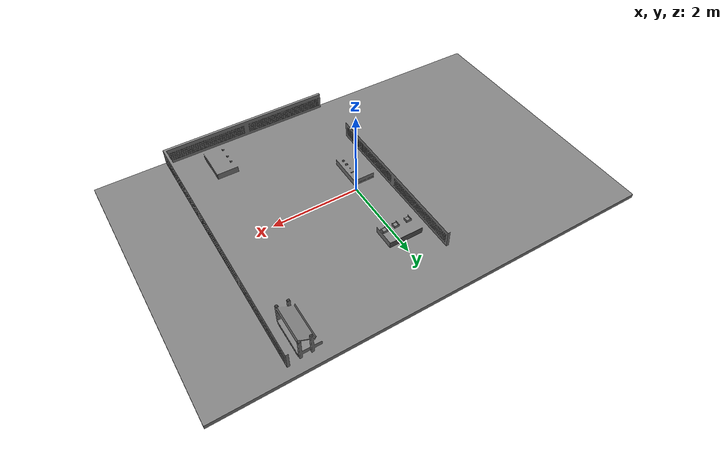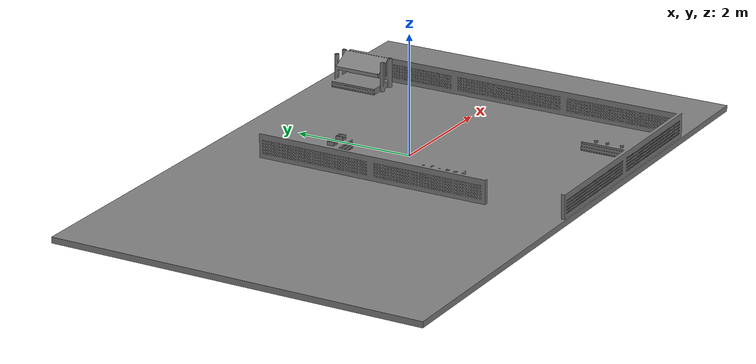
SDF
<?xml version="1.0" ?>
<sdf version="1.9">
  <world name="arena_world">
    <plugin filename="gz-sim-physics-system" name="gz::sim::systems::Physics" />
    <plugin filename="gz-sim-user-commands-system" name="gz::sim::systems::UserCommands" />
    <plugin filename="gz-sim-scene-broadcaster-system" name="gz::sim::systems::SceneBroadcaster" />
    <plugin filename="gz-sim-sensors-system" name="gz::sim::systems::Sensors">
      <render_engine>ogre2</render_engine>
    </plugin>

    <scene>
      <ambient>0.4 0.4 0.4 1</ambient>
      <background>0.7 0.7 0.7 1</background>
      <shadows>true</shadows>
      <grid>true</grid> </scene>

    <light type="directional" name="sun">
      <cast_shadows>true</cast_shadows>
      <pose>0 0 10 0 0 0</pose>
      <diffuse>0.8 0.8 0.8 1</diffuse>
      <specular>0.2 0.2 0.2 1</specular>
      <direction>-0.5 0.1 -0.9</direction>
    </light>

    <include>
      <uri>model://minha_arena</uri>
      <pose>0 0 0 0 0 0</pose>
    </include>
  </world>
</sdf>

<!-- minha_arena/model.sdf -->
<sdf version="1.9">
  <model name="minha_arena">
    <static>true</static>
    <link name="link">
      <collision name="collision">
        <geometry>
          <mesh>
            <uri>model://minha_arena/meshes/arena.dae</uri>
            <scale>0.001 0.001 0.001</scale>
          </mesh>
        </geometry>
      </collision>
      <visual name="visual">
        <geometry>
          <mesh>
            <uri>model://minha_arena/meshes/arena.dae</uri>
            <scale>0.001 0.001 0.001</scale>
          </mesh>
        </geometry>
        <material>
          <ambient>0.4 0.4 0.4 1.0</ambient>
          <diffuse>0.5 0.5 0.5 1.0</diffuse>
          <specular>0.1 0.1 0.1 1.0</specular>
        </material>
      </visual>
    </link>
  </model>
</sdf>
